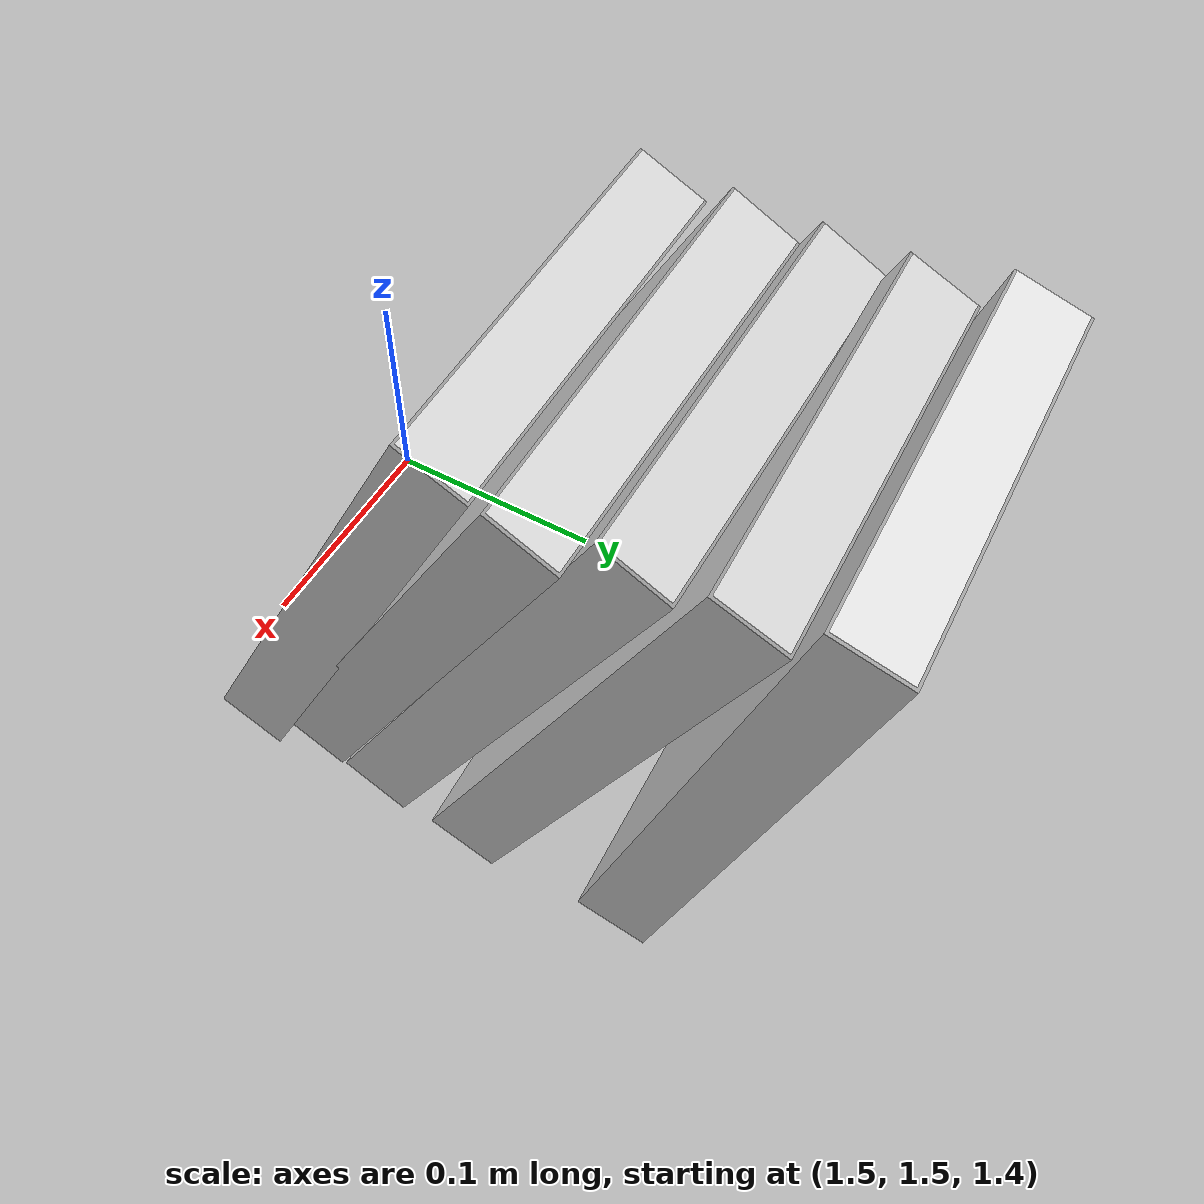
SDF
<sdf version="1.6">
 <world name="default">
  <model name="ground_plane">
   <static>1</static>
   <link name="link">
    <collision name="collision">
     <geometry><plane><normal>0 0 1</normal><size>100 100</size></plane></geometry>
     <surface><friction><ode><mu>1</mu><mu2>1</mu2></ode></friction></surface>
    </collision>
    <visual name="visual">
     <cast_shadows>0</cast_shadows>
     <geometry><plane><normal>0 0 1</normal><size>100 100</size></plane></geometry>
     <material>
      <script><uri>file://media/materials/scripts/gazebo.material</uri><name>Gazebo/Grey</name></script>
     </material>
    </visual>
    <velocity_decay><linear>0</linear><angular>0</angular></velocity_decay>
   </link>
  </model>
  <model name="book_10">
   <link name="cover">
    <pose>0 -0.000108 0.015405 0 -0 0</pose>
    <visual name="visual">
     <geometry><box><size>0.245 0.16 0.03</size></box></geometry>
     <material>
      <script>
       <uri>model://book_10/materials/scripts</uri>
       <uri>model://book_10/materials/textures</uri>
       <name>book_10</name>
      </script>
     </material>
    </visual>
    <collision name="collision"><geometry><box><size>0.245 0.16 0.03</size></box></geometry></collision>
   </link>
   <link name="page">
    <pose>0 0.000608 0.015405 0 -0 0</pose>
    <visual name="visual">
     <geometry><box><size>0.24502 0.15862 0.028</size></box></geometry>
     <material>
      <lighting>1</lighting>
      <ambient>1 1 1 1</ambient>
      <diffuse>1 1 1 1</diffuse>
      <specular>0.01 0.01 0.01 1</specular>
      <emissive>0 0 0 1</emissive>
      <shader type="vertex"><normal_map>__default__</normal_map></shader>
     </material>
    </visual>
    <collision name="collision"><geometry><box><size>0.245 0.16 0.03</size></box></geometry></collision>
   </link>
   <static>1</static>
   <pose>1.58252 1.72751 1.53136 -3.12764 1.25017 -1.50569</pose>
  </model>
  <model name="book_1">
   <link name="cover">
    <pose>0 -0.000108 0.015405 0 -0 0</pose>
    <visual name="visual">
     <geometry><box><size>0.245 0.16 0.03</size></box></geometry>
     <material>
      <script>
       <uri>model://book_1/materials/scripts</uri>
       <uri>model://book_1/materials/textures</uri>
       <name>book_1</name>
      </script>
     </material>
    </visual>
    <collision name="collision"><geometry><box><size>0.245 0.16 0.03</size></box></geometry></collision>
   </link>
   <link name="page">
    <pose>0 0.000608 0.015405 0 -0 0</pose>
    <visual name="visual">
     <geometry><box><size>0.24502 0.15862 0.028</size></box></geometry>
     <material>
      <lighting>1</lighting>
      <ambient>1 1 1 1</ambient>
      <diffuse>1 1 1 1</diffuse>
      <specular>0.01 0.01 0.01 1</specular>
      <emissive>0 0 0 1</emissive>
      <shader type="vertex"><normal_map>__default__</normal_map></shader>
     </material>
    </visual>
    <collision name="collision"><geometry><box><size>0.245 0.16 0.03</size></box></geometry></collision>
   </link>
   <static>1</static>
   <pose>1.57892 1.63737 1.52769 -3.11882 1.07703 -1.53154</pose>
  </model>
  <model name="book_11">
   <link name="cover">
    <pose>0 -0.000108 0.015405 0 -0 0</pose>
    <visual name="visual">
     <geometry><box><size>0.245 0.16 0.03</size></box></geometry>
     <material>
      <script>
       <uri>model://book_11/materials/scripts</uri>
       <uri>model://book_11/materials/textures</uri>
       <name>book_11</name>
      </script>
     </material>
    </visual>
    <collision name="collision"><geometry><box><size>0.245 0.16 0.03</size></box></geometry></collision>
   </link>
   <link name="page">
    <pose>0 0.000608 0.015405 0 -0 0</pose>
    <visual name="visual">
     <geometry><box><size>0.24502 0.15862 0.028</size></box></geometry>
     <material>
      <lighting>1</lighting>
      <ambient>1 1 1 1</ambient>
      <diffuse>1 1 1 1</diffuse>
      <specular>0.01 0.01 0.01 1</specular>
      <emissive>0 0 0 1</emissive>
      <shader type="vertex"><normal_map>__default__</normal_map></shader>
     </material>
    </visual>
    <collision name="collision"><geometry><box><size>0.245 0.16 0.03</size></box></geometry></collision>
   </link>
   <static>1</static>
   <pose>1.57867 1.56994 1.52807 -3.11726 1.11114 -1.52978</pose>
  </model>
  <model name="book_15">
   <link name="cover">
    <pose>0 -0.000108 0.015405 0 -0 0</pose>
    <visual name="visual">
     <geometry><box><size>0.245 0.16 0.03</size></box></geometry>
     <material>
      <script>
       <uri>model://book_15/materials/scripts</uri>
       <uri>model://book_15/materials/textures</uri>
       <name>book_15</name>
      </script>
     </material>
    </visual>
    <collision name="collision"><geometry><box><size>0.245 0.16 0.03</size></box></geometry></collision>
   </link>
   <link name="page">
    <pose>0 0.000608 0.015405 0 -0 0</pose>
    <visual name="visual">
     <geometry><box><size>0.24502 0.15862 0.028</size></box></geometry>
     <material>
      <lighting>1</lighting>
      <ambient>1 1 1 1</ambient>
      <diffuse>1 1 1 1</diffuse>
      <specular>0.01 0.01 0.01 1</specular>
      <emissive>0 0 0 1</emissive>
      <shader type="vertex"><normal_map>__default__</normal_map></shader>
     </material>
    </visual>
    <collision name="collision"><geometry><box><size>0.245 0.16 0.03</size></box></geometry></collision>
   </link>
   <static>1</static>
   <pose>1.58186 1.67602 1.52823 -3.12635 1.10761 -1.50686</pose>
  </model>
  <model name="book_17">
   <link name="cover">
    <pose>0 -0.000108 0.015405 0 -0 0</pose>
    <visual name="visual">
     <geometry><box><size>0.245 0.16 0.03</size></box></geometry>
     <material>
      <script>
       <uri>model://book_17/materials/scripts</uri>
       <uri>model://book_17/materials/textures</uri>
       <name>book_17</name>
      </script>
     </material>
    </visual>
    <collision name="collision"><geometry><box><size>0.245 0.16 0.03</size></box></geometry></collision>
   </link>
   <link name="page">
    <pose>0 0.000608 0.015405 0 -0 0</pose>
    <visual name="visual">
     <geometry><box><size>0.24502 0.15862 0.028</size></box></geometry>
     <material>
      <lighting>1</lighting>
      <ambient>1 1 1 1</ambient>
      <diffuse>1 1 1 1</diffuse>
      <specular>0.01 0.01 0.01 1</specular>
      <emissive>0 0 0 1</emissive>
      <shader type="vertex"><normal_map>__default__</normal_map></shader>
     </material>
    </visual>
    <collision name="collision"><geometry><box><size>0.245 0.16 0.03</size></box></geometry></collision>
   </link>
   <static>1</static>
   <pose>1.58009 1.60475 1.53124 3.06968 1.07706 -1.63479</pose>
  </model>
  <model name="Apriltag36_11_00006">
   <link name="main">
    <visual name="main_Visual">
     <geometry><box><size>1 1 0.01</size></box></geometry>
     <material>
      <script>
       <uri>model://Apriltag36_11_00006/materials/scripts</uri>
       <uri>model://Apriltag36_11_00006/materials/textures</uri>
       <name>Apriltag36_11_00006</name>
      </script>
     </material>
    </visual>
   </link>
   <static>1</static>
   <pose>4.03039 5.41377 0.024342 0 -0 0</pose>
  </model>
 </world>
</sdf>
